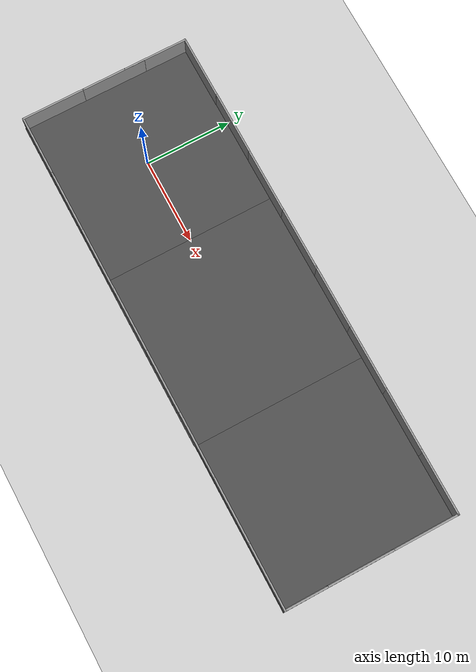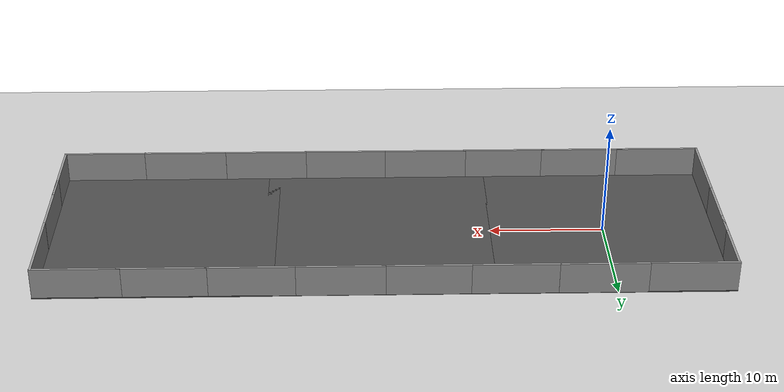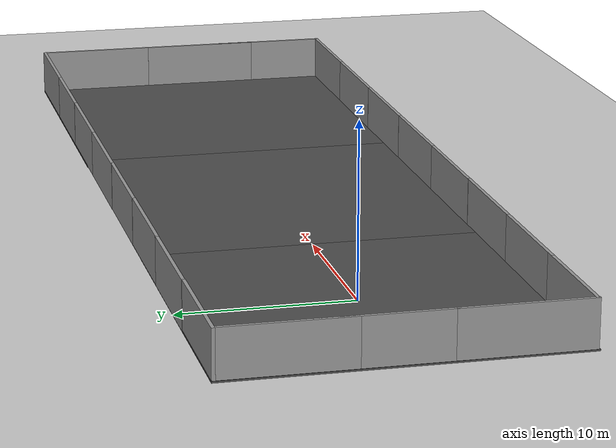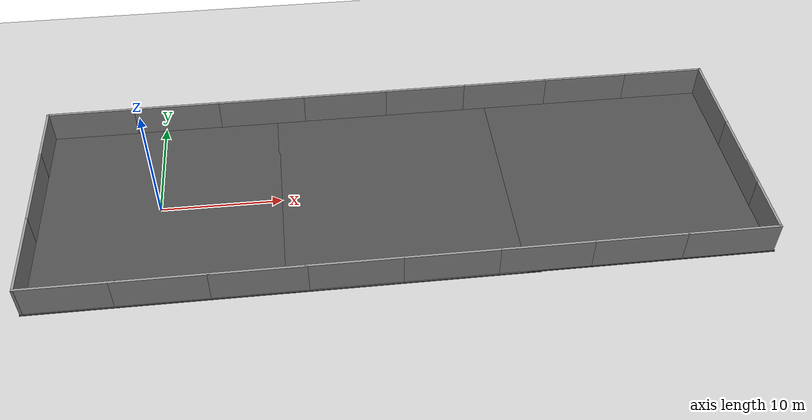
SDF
<sdf version="1.6">
 <world name="default">
  <model name="ground_plane">
   <static>1</static>
   <link name="link">
    <collision name="collision">
     <geometry><plane><normal>0 0 1</normal><size>100 100</size></plane></geometry>
     <surface>
      <contact><collide_bitmask>65535</collide_bitmask></contact>
      <friction><ode><mu>100</mu><mu2>50</mu2></ode></friction>
     </surface>
    </collision>
    <visual name="visual">
     <cast_shadows>0</cast_shadows>
     <geometry><plane><normal>0 0 1</normal><size>100 100</size></plane></geometry>
     <material>
      <script><uri>file://media/materials/scripts/gazebo.material</uri><name>Gazebo/Grey</name></script>
     </material>
    </visual>
   </link>
  </model>
  <model name="asphalt_plane">
   <pose>0.018233 0.000989 0 0 -0 0</pose>
   <static>1</static>
   <link name="link">
    <collision name="collision"><geometry><box><size>20 20 0.1</size></box></geometry></collision>
    <visual name="visual">
     <cast_shadows>0</cast_shadows>
     <geometry><box><size>20 20 0.1</size></box></geometry>
     <material>
      <script>
       <uri>model://asphalt_plane/materials/scripts</uri>
       <uri>model://asphalt_plane/materials/textures</uri>
       <name>vrc/asphalt</name>
      </script>
     </material>
    </visual>
   </link>
  </model>
  <physics name="default_physics" default="0" type="ode">
   <ode>
    <solver>
     <type>quick</type>
     <iters>10</iters>
     <sor>1.3</sor>
     <use_dynamic_moi_rescaling>0</use_dynamic_moi_rescaling>
    </solver>
    <constraints>
     <cfm>0</cfm>
     <erp>0.2</erp>
     <contact_max_correcting_vel>100</contact_max_correcting_vel>
     <contact_surface_layer>0.001</contact_surface_layer>
    </constraints>
   </ode>
   <max_step_size>0.004</max_step_size>
   <real_time_factor>1</real_time_factor>
   <real_time_update_rate>250</real_time_update_rate>
  </physics>
  <gravity>0 0 -9.8066</gravity>
  <magnetic_field>6e-06 2.3e-05 -4.2e-05</magnetic_field>
  <atmosphere type="adiabatic"/>
  <scene><ambient>0.4 0.4 0.4 1</ambient><background>0.7 0.7 0.7 1</background><shadows>1</shadows></scene>
  <spherical_coordinates>
   <surface_model>EARTH_WGS84</surface_model>
   <latitude_deg>0</latitude_deg>
   <longitude_deg>0</longitude_deg>
   <elevation>0</elevation>
   <heading_deg>0</heading_deg>
  </spherical_coordinates>
  <model name="asphalt_plane_clone">
   <static>1</static>
   <link name="link">
    <collision name="collision"><geometry><box><size>20 20 0.1</size></box></geometry></collision>
    <visual name="visual">
     <cast_shadows>0</cast_shadows>
     <geometry><box><size>20 20 0.1</size></box></geometry>
     <material>
      <script>
       <uri>model://asphalt_plane/materials/scripts</uri>
       <uri>model://asphalt_plane/materials/textures</uri>
       <name>vrc/asphalt</name>
      </script>
     </material>
    </visual>
   </link>
   <pose>19.9036 -0.004695 0 0 -0 0</pose>
  </model>
  <light name="user_point_light_0" type="point">
   <pose>-0.103336 -0.00584 1 0 -0 0</pose>
   <diffuse>0.5 0.5 0.5 1</diffuse>
   <specular>0.1 0.1 0.1 1</specular>
   <attenuation>
    <range>20</range>
    <constant>0.5</constant>
    <linear>0.01</linear>
    <quadratic>0.001</quadratic>
   </attenuation>
   <cast_shadows>0</cast_shadows>
   <direction>0 0 -1</direction>
   <spot><inner_angle>0</inner_angle><outer_angle>0</outer_angle><falloff>0</falloff></spot>
  </light>
  <light name="user_point_light_0_clone" type="point">
   <pose>8.22213 -0.106495 5 0 -0 0</pose>
   <diffuse>0.498039 0.498039 0.498039 1</diffuse>
   <specular>0.0980392 0.0980392 0.0980392 1</specular>
   <direction>0 0 -1</direction>
   <attenuation>
    <range>20</range>
    <constant>0.5</constant>
    <linear>0.01</linear>
    <quadratic>0.001</quadratic>
   </attenuation>
   <cast_shadows>0</cast_shadows>
   <spot><inner_angle>0</inner_angle><outer_angle>0</outer_angle><falloff>0</falloff></spot>
  </light>
  <light name="user_point_light_0_clone_0" type="point">
   <pose>24.721 -0.158665 5 0 -0 0</pose>
   <diffuse>0.498039 0.498039 0.498039 1</diffuse>
   <specular>0.0980392 0.0980392 0.0980392 1</specular>
   <direction>0 0 -1</direction>
   <attenuation>
    <range>20</range>
    <constant>0.5</constant>
    <linear>0.01</linear>
    <quadratic>0.001</quadratic>
   </attenuation>
   <cast_shadows>0</cast_shadows>
   <spot><inner_angle>0</inner_angle><outer_angle>0</outer_angle><falloff>0</falloff></spot>
  </light>
  <model name="asphalt_plane_clone_clone">
   <static>1</static>
   <link name="link">
    <collision name="collision"><geometry><box><size>20 20 0.1</size></box></geometry></collision>
    <visual name="visual">
     <cast_shadows>0</cast_shadows>
     <geometry><box><size>20 20 0.1</size></box></geometry>
     <material>
      <script>
       <uri>model://asphalt_plane/materials/scripts</uri>
       <uri>model://asphalt_plane/materials/textures</uri>
       <name>vrc/asphalt</name>
      </script>
     </material>
    </visual>
   </link>
   <pose>38.8321 0.046546 0 0 -0 0</pose>
  </model>
  <model name="grey_wall">
   <static>1</static>
   <link name="link">
    <pose>0 0 1.4 0 -0 0</pose>
    <collision name="collision"><geometry><box><size>7.5 0.2 2.8</size></box></geometry></collision>
    <visual name="visual">
     <cast_shadows>0</cast_shadows>
     <geometry><box><size>7.5 0.2 2.8</size></box></geometry>
     <material>
      <script>
       <uri>https://fuel.gazebosim.org/1.0/openrobotics/models/grey wall/2/files/materials/scripts</uri>
       <uri>https://fuel.gazebosim.org/1.0/openrobotics/models/grey wall/2/files/materials/textures</uri>
       <name>vrc/grey_wall</name>
      </script>
     </material>
    </visual>
   </link>
   <pose>-6.2162 9.89511 0 0 -0 0</pose>
  </model>
  <model name="grey_wall_clone">
   <static>1</static>
   <link name="link">
    <pose>0 0 1.4 0 -0 0</pose>
    <collision name="collision"><geometry><box><size>7.5 0.2 2.8</size></box></geometry></collision>
    <visual name="visual">
     <cast_shadows>0</cast_shadows>
     <geometry><box><size>7.5 0.2 2.8</size></box></geometry>
     <material>
      <script>
       <uri>https://fuel.gazebosim.org/1.0/openrobotics/models/grey wall/2/files/materials/scripts</uri>
       <uri>https://fuel.gazebosim.org/1.0/openrobotics/models/grey wall/2/files/materials/textures</uri>
       <name>vrc/grey_wall</name>
      </script>
     </material>
    </visual>
   </link>
   <pose>1.24885 9.92018 0 0 -0 0</pose>
  </model>
  <model name="grey_wall_clone_0">
   <static>1</static>
   <link name="link">
    <pose>0 0 1.4 0 -0 0</pose>
    <collision name="collision"><geometry><box><size>7.5 0.2 2.8</size></box></geometry></collision>
    <visual name="visual">
     <cast_shadows>0</cast_shadows>
     <geometry><box><size>7.5 0.2 2.8</size></box></geometry>
     <material>
      <script>
       <uri>https://fuel.gazebosim.org/1.0/openrobotics/models/grey wall/2/files/materials/scripts</uri>
       <uri>https://fuel.gazebosim.org/1.0/openrobotics/models/grey wall/2/files/materials/textures</uri>
       <name>vrc/grey_wall</name>
      </script>
     </material>
    </visual>
   </link>
   <pose>8.68279 9.90786 0 0 -0 0</pose>
  </model>
  <model name="grey_wall_clone_0_clone">
   <static>1</static>
   <link name="link">
    <pose>0 0 1.4 0 -0 0</pose>
    <collision name="collision"><geometry><box><size>7.5 0.2 2.8</size></box></geometry></collision>
    <visual name="visual">
     <cast_shadows>0</cast_shadows>
     <geometry><box><size>7.5 0.2 2.8</size></box></geometry>
     <material>
      <script>
       <uri>https://fuel.gazebosim.org/1.0/openrobotics/models/grey wall/2/files/materials/scripts</uri>
       <uri>https://fuel.gazebosim.org/1.0/openrobotics/models/grey wall/2/files/materials/textures</uri>
       <name>vrc/grey_wall</name>
      </script>
     </material>
    </visual>
   </link>
   <pose>16.0357 9.92108 0 0 -0 0</pose>
  </model>
  <model name="grey_wall_clone_0_clone_0">
   <static>1</static>
   <link name="link">
    <pose>0 0 1.4 0 -0 0</pose>
    <collision name="collision"><geometry><box><size>7.5 0.2 2.8</size></box></geometry></collision>
    <visual name="visual">
     <cast_shadows>0</cast_shadows>
     <geometry><box><size>7.5 0.2 2.8</size></box></geometry>
     <material>
      <script>
       <uri>https://fuel.gazebosim.org/1.0/openrobotics/models/grey wall/2/files/materials/scripts</uri>
       <uri>https://fuel.gazebosim.org/1.0/openrobotics/models/grey wall/2/files/materials/textures</uri>
       <name>vrc/grey_wall</name>
      </script>
     </material>
    </visual>
   </link>
   <pose>23.147 9.93495 0 0 -0 0</pose>
  </model>
  <model name="grey_wall_clone_0_clone_1">
   <static>1</static>
   <link name="link">
    <pose>0 0 1.4 0 -0 0</pose>
    <collision name="collision"><geometry><box><size>7.5 0.2 2.8</size></box></geometry></collision>
    <visual name="visual">
     <cast_shadows>0</cast_shadows>
     <geometry><box><size>7.5 0.2 2.8</size></box></geometry>
     <material>
      <script>
       <uri>https://fuel.gazebosim.org/1.0/openrobotics/models/grey wall/2/files/materials/scripts</uri>
       <uri>https://fuel.gazebosim.org/1.0/openrobotics/models/grey wall/2/files/materials/textures</uri>
       <name>vrc/grey_wall</name>
      </script>
     </material>
    </visual>
   </link>
   <pose>30.5992 9.9339 0 0 -0 0</pose>
  </model>
  <model name="grey_wall_clone_0_clone_2">
   <static>1</static>
   <link name="link">
    <pose>0 0 1.4 0 -0 0</pose>
    <collision name="collision"><geometry><box><size>7.5 0.2 2.8</size></box></geometry></collision>
    <visual name="visual">
     <cast_shadows>0</cast_shadows>
     <geometry><box><size>7.5 0.2 2.8</size></box></geometry>
     <material>
      <script>
       <uri>https://fuel.gazebosim.org/1.0/openrobotics/models/grey wall/2/files/materials/scripts</uri>
       <uri>https://fuel.gazebosim.org/1.0/openrobotics/models/grey wall/2/files/materials/textures</uri>
       <name>vrc/grey_wall</name>
      </script>
     </material>
    </visual>
   </link>
   <pose>37.9282 9.94001 0 0 -0 0</pose>
  </model>
  <model name="grey_wall_clone_0_clone_3">
   <static>1</static>
   <link name="link">
    <pose>0 0 1.4 0 -0 0</pose>
    <collision name="collision"><geometry><box><size>7.5 0.2 2.8</size></box></geometry></collision>
    <visual name="visual">
     <cast_shadows>0</cast_shadows>
     <geometry><box><size>7.5 0.2 2.8</size></box></geometry>
     <material>
      <script>
       <uri>https://fuel.gazebosim.org/1.0/openrobotics/models/grey wall/2/files/materials/scripts</uri>
       <uri>https://fuel.gazebosim.org/1.0/openrobotics/models/grey wall/2/files/materials/textures</uri>
       <name>vrc/grey_wall</name>
      </script>
     </material>
    </visual>
   </link>
   <pose>45.048 9.94053 0 0 -0 0</pose>
  </model>
  <model name="grey_wall_clone_0_clone_4">
   <static>1</static>
   <link name="link">
    <pose>0 0 1.4 0 -0 0</pose>
    <collision name="collision"><geometry><box><size>7.5 0.2 2.8</size></box></geometry></collision>
    <visual name="visual">
     <cast_shadows>0</cast_shadows>
     <geometry><box><size>7.5 0.2 2.8</size></box></geometry>
     <material>
      <script>
       <uri>https://fuel.gazebosim.org/1.0/openrobotics/models/grey wall/2/files/materials/scripts</uri>
       <uri>https://fuel.gazebosim.org/1.0/openrobotics/models/grey wall/2/files/materials/textures</uri>
       <name>vrc/grey_wall</name>
      </script>
     </material>
    </visual>
   </link>
   <pose>48.6675 6.26641 0 0 -0 1.5692</pose>
  </model>
  <model name="grey_wall_clone_0_clone_4_clone">
   <static>1</static>
   <link name="link">
    <pose>0 0 1.4 0 -0 0</pose>
    <collision name="collision"><geometry><box><size>7.5 0.2 2.8</size></box></geometry></collision>
    <visual name="visual">
     <cast_shadows>0</cast_shadows>
     <geometry><box><size>7.5 0.2 2.8</size></box></geometry>
     <material>
      <script>
       <uri>https://fuel.gazebosim.org/1.0/openrobotics/models/grey wall/2/files/materials/scripts</uri>
       <uri>https://fuel.gazebosim.org/1.0/openrobotics/models/grey wall/2/files/materials/textures</uri>
       <name>vrc/grey_wall</name>
      </script>
     </material>
    </visual>
   </link>
   <pose>48.6504 -1.17215 0 0 -0 1.5692</pose>
  </model>
  <model name="grey_wall_clone_0_clone_4_clone_0">
   <static>1</static>
   <link name="link">
    <pose>0 0 1.4 0 -0 0</pose>
    <collision name="collision"><geometry><box><size>7.5 0.2 2.8</size></box></geometry></collision>
    <visual name="visual">
     <cast_shadows>0</cast_shadows>
     <geometry><box><size>7.5 0.2 2.8</size></box></geometry>
     <material>
      <script>
       <uri>https://fuel.gazebosim.org/1.0/openrobotics/models/grey wall/2/files/materials/scripts</uri>
       <uri>https://fuel.gazebosim.org/1.0/openrobotics/models/grey wall/2/files/materials/textures</uri>
       <name>vrc/grey_wall</name>
      </script>
     </material>
    </visual>
   </link>
   <pose>48.6533 -6.0372 0 0 -0 1.5692</pose>
  </model>
  <model name="grey_wall_clone_0_clone_3_clone">
   <static>1</static>
   <link name="link">
    <pose>0 0 1.4 0 -0 0</pose>
    <collision name="collision"><geometry><box><size>7.5 0.2 2.8</size></box></geometry></collision>
    <visual name="visual">
     <cast_shadows>0</cast_shadows>
     <geometry><box><size>7.5 0.2 2.8</size></box></geometry>
     <material>
      <script>
       <uri>https://fuel.gazebosim.org/1.0/openrobotics/models/grey wall/2/files/materials/scripts</uri>
       <uri>https://fuel.gazebosim.org/1.0/openrobotics/models/grey wall/2/files/materials/textures</uri>
       <name>vrc/grey_wall</name>
      </script>
     </material>
    </visual>
   </link>
   <pose>45.0081 -9.78389 0 0 -0 0</pose>
  </model>
  <model name="grey_wall_clone_0_clone_3_clone_0">
   <static>1</static>
   <link name="link">
    <pose>0 0 1.4 0 -0 0</pose>
    <collision name="collision"><geometry><box><size>7.5 0.2 2.8</size></box></geometry></collision>
    <visual name="visual">
     <cast_shadows>0</cast_shadows>
     <geometry><box><size>7.5 0.2 2.8</size></box></geometry>
     <material>
      <script>
       <uri>https://fuel.gazebosim.org/1.0/openrobotics/models/grey wall/2/files/materials/scripts</uri>
       <uri>https://fuel.gazebosim.org/1.0/openrobotics/models/grey wall/2/files/materials/textures</uri>
       <name>vrc/grey_wall</name>
      </script>
     </material>
    </visual>
   </link>
   <pose>37.6173 -9.77828 0 0 -0 0</pose>
  </model>
  <model name="grey_wall_clone_0_clone_3_clone_1">
   <static>1</static>
   <link name="link">
    <pose>0 0 1.4 0 -0 0</pose>
    <collision name="collision"><geometry><box><size>7.5 0.2 2.8</size></box></geometry></collision>
    <visual name="visual">
     <cast_shadows>0</cast_shadows>
     <geometry><box><size>7.5 0.2 2.8</size></box></geometry>
     <material>
      <script>
       <uri>https://fuel.gazebosim.org/1.0/openrobotics/models/grey wall/2/files/materials/scripts</uri>
       <uri>https://fuel.gazebosim.org/1.0/openrobotics/models/grey wall/2/files/materials/textures</uri>
       <name>vrc/grey_wall</name>
      </script>
     </material>
    </visual>
   </link>
   <pose>30.1799 -9.78593 0 0 -0 0</pose>
  </model>
  <model name="grey_wall_clone_0_clone_3_clone_2">
   <static>1</static>
   <link name="link">
    <pose>0 0 1.4 0 -0 0</pose>
    <collision name="collision"><geometry><box><size>7.5 0.2 2.8</size></box></geometry></collision>
    <visual name="visual">
     <cast_shadows>0</cast_shadows>
     <geometry><box><size>7.5 0.2 2.8</size></box></geometry>
     <material>
      <script>
       <uri>https://fuel.gazebosim.org/1.0/openrobotics/models/grey wall/2/files/materials/scripts</uri>
       <uri>https://fuel.gazebosim.org/1.0/openrobotics/models/grey wall/2/files/materials/textures</uri>
       <name>vrc/grey_wall</name>
      </script>
     </material>
    </visual>
   </link>
   <pose>22.8283 -9.79297 0 0 -0 0</pose>
  </model>
  <model name="grey_wall_clone_0_clone_3_clone_3">
   <static>1</static>
   <link name="link">
    <pose>0 0 1.4 0 -0 0</pose>
    <collision name="collision"><geometry><box><size>7.5 0.2 2.8</size></box></geometry></collision>
    <visual name="visual">
     <cast_shadows>0</cast_shadows>
     <geometry><box><size>7.5 0.2 2.8</size></box></geometry>
     <material>
      <script>
       <uri>https://fuel.gazebosim.org/1.0/openrobotics/models/grey wall/2/files/materials/scripts</uri>
       <uri>https://fuel.gazebosim.org/1.0/openrobotics/models/grey wall/2/files/materials/textures</uri>
       <name>vrc/grey_wall</name>
      </script>
     </material>
    </visual>
   </link>
   <pose>15.3644 -9.79309 0 0 -0 0</pose>
  </model>
  <model name="grey_wall_clone_0_clone_3_clone_4">
   <static>1</static>
   <link name="link">
    <pose>0 0 1.4 0 -0 0</pose>
    <collision name="collision"><geometry><box><size>7.5 0.2 2.8</size></box></geometry></collision>
    <visual name="visual">
     <cast_shadows>0</cast_shadows>
     <geometry><box><size>7.5 0.2 2.8</size></box></geometry>
     <material>
      <script>
       <uri>https://fuel.gazebosim.org/1.0/openrobotics/models/grey wall/2/files/materials/scripts</uri>
       <uri>https://fuel.gazebosim.org/1.0/openrobotics/models/grey wall/2/files/materials/textures</uri>
       <name>vrc/grey_wall</name>
      </script>
     </material>
    </visual>
   </link>
   <pose>8.07064 -9.8086 0 0 -0 0</pose>
  </model>
  <model name="grey_wall_clone_0_clone_3_clone_5">
   <static>1</static>
   <link name="link">
    <pose>0 0 1.4 0 -0 0</pose>
    <collision name="collision"><geometry><box><size>7.5 0.2 2.8</size></box></geometry></collision>
    <visual name="visual">
     <cast_shadows>0</cast_shadows>
     <geometry><box><size>7.5 0.2 2.8</size></box></geometry>
     <material>
      <script>
       <uri>https://fuel.gazebosim.org/1.0/openrobotics/models/grey wall/2/files/materials/scripts</uri>
       <uri>https://fuel.gazebosim.org/1.0/openrobotics/models/grey wall/2/files/materials/textures</uri>
       <name>vrc/grey_wall</name>
      </script>
     </material>
    </visual>
   </link>
   <pose>0.801671 -9.80775 0 0 -0 0</pose>
  </model>
  <model name="grey_wall_clone_0_clone_3_clone_6">
   <static>1</static>
   <link name="link">
    <pose>0 0 1.4 0 -0 0</pose>
    <collision name="collision"><geometry><box><size>7.5 0.2 2.8</size></box></geometry></collision>
    <visual name="visual">
     <cast_shadows>0</cast_shadows>
     <geometry><box><size>7.5 0.2 2.8</size></box></geometry>
     <material>
      <script>
       <uri>https://fuel.gazebosim.org/1.0/openrobotics/models/grey wall/2/files/materials/scripts</uri>
       <uri>https://fuel.gazebosim.org/1.0/openrobotics/models/grey wall/2/files/materials/textures</uri>
       <name>vrc/grey_wall</name>
      </script>
     </material>
    </visual>
   </link>
   <pose>-6.20311 -9.80473 0 0 -0 0</pose>
  </model>
  <model name="grey_wall_clone_0_clone_4_clone_0_clone">
   <static>1</static>
   <link name="link">
    <pose>0 0 1.4 0 -0 0</pose>
    <collision name="collision"><geometry><box><size>7.5 0.2 2.8</size></box></geometry></collision>
    <visual name="visual">
     <cast_shadows>0</cast_shadows>
     <geometry><box><size>7.5 0.2 2.8</size></box></geometry>
     <material>
      <script>
       <uri>https://fuel.gazebosim.org/1.0/openrobotics/models/grey wall/2/files/materials/scripts</uri>
       <uri>https://fuel.gazebosim.org/1.0/openrobotics/models/grey wall/2/files/materials/textures</uri>
       <name>vrc/grey_wall</name>
      </script>
     </material>
    </visual>
   </link>
   <pose>-9.85672 -6.17929 0 0 -0 1.5692</pose>
  </model>
  <model name="grey_wall_clone_0_clone_4_clone_0_clone_0">
   <static>1</static>
   <link name="link">
    <pose>0 0 1.4 0 -0 0</pose>
    <collision name="collision"><geometry><box><size>7.5 0.2 2.8</size></box></geometry></collision>
    <visual name="visual">
     <cast_shadows>0</cast_shadows>
     <geometry><box><size>7.5 0.2 2.8</size></box></geometry>
     <material>
      <script>
       <uri>https://fuel.gazebosim.org/1.0/openrobotics/models/grey wall/2/files/materials/scripts</uri>
       <uri>https://fuel.gazebosim.org/1.0/openrobotics/models/grey wall/2/files/materials/textures</uri>
       <name>vrc/grey_wall</name>
      </script>
     </material>
    </visual>
   </link>
   <pose>-9.84401 1.11599 0 0 -0 1.5692</pose>
  </model>
  <model name="grey_wall_clone_0_clone_4_clone_0_clone_1">
   <static>1</static>
   <link name="link">
    <pose>0 0 1.4 0 -0 0</pose>
    <collision name="collision"><geometry><box><size>7.5 0.2 2.8</size></box></geometry></collision>
    <visual name="visual">
     <cast_shadows>0</cast_shadows>
     <geometry><box><size>7.5 0.2 2.8</size></box></geometry>
     <material>
      <script>
       <uri>https://fuel.gazebosim.org/1.0/openrobotics/models/grey wall/2/files/materials/scripts</uri>
       <uri>https://fuel.gazebosim.org/1.0/openrobotics/models/grey wall/2/files/materials/textures</uri>
       <name>vrc/grey_wall</name>
      </script>
     </material>
    </visual>
   </link>
   <pose>-9.83829 6.21357 0 0 -0 1.5692</pose>
  </model>
  <light name="user_point_light_0_clone_1" type="point">
   <pose>30.4886 -0.170676 5 0 -0 0</pose>
   <diffuse>0.5 0.5 0.5 1</diffuse>
   <specular>0.1 0.1 0.1 1</specular>
   <direction>0 0 -1</direction>
   <attenuation>
    <range>20</range>
    <constant>0.5</constant>
    <linear>0.01</linear>
    <quadratic>0.001</quadratic>
   </attenuation>
   <cast_shadows>0</cast_shadows>
   <spot><inner_angle>0</inner_angle><outer_angle>0</outer_angle><falloff>0</falloff></spot>
  </light>
  <light name="user_point_light_0_clone_2" type="point">
   <pose>40.8834 -0.061218 5 0 -0 0</pose>
   <diffuse>0.5 0.5 0.5 1</diffuse>
   <specular>0.1 0.1 0.1 1</specular>
   <direction>0 0 -1</direction>
   <attenuation>
    <range>20</range>
    <constant>0.5</constant>
    <linear>0.01</linear>
    <quadratic>0.001</quadratic>
   </attenuation>
   <cast_shadows>0</cast_shadows>
   <spot><inner_angle>0</inner_angle><outer_angle>0</outer_angle><falloff>0</falloff></spot>
  </light>
  <light name="user_point_light_0_clone_3" type="point">
   <pose>-7.8344 -0.235718 5 0 -0 0</pose>
   <diffuse>0.5 0.5 0.5 1</diffuse>
   <specular>0.1 0.1 0.1 1</specular>
   <direction>0 0 -1</direction>
   <attenuation>
    <range>20</range>
    <constant>0.5</constant>
    <linear>0.01</linear>
    <quadratic>0.001</quadratic>
   </attenuation>
   <cast_shadows>0</cast_shadows>
   <spot><inner_angle>0</inner_angle><outer_angle>0</outer_angle><falloff>0</falloff></spot>
  </light>
 </world>
</sdf>
